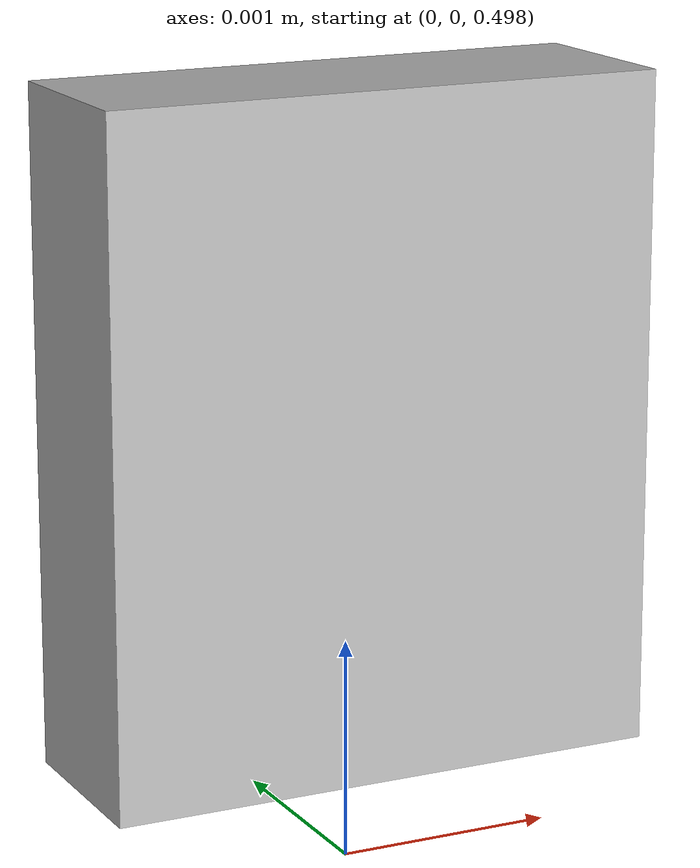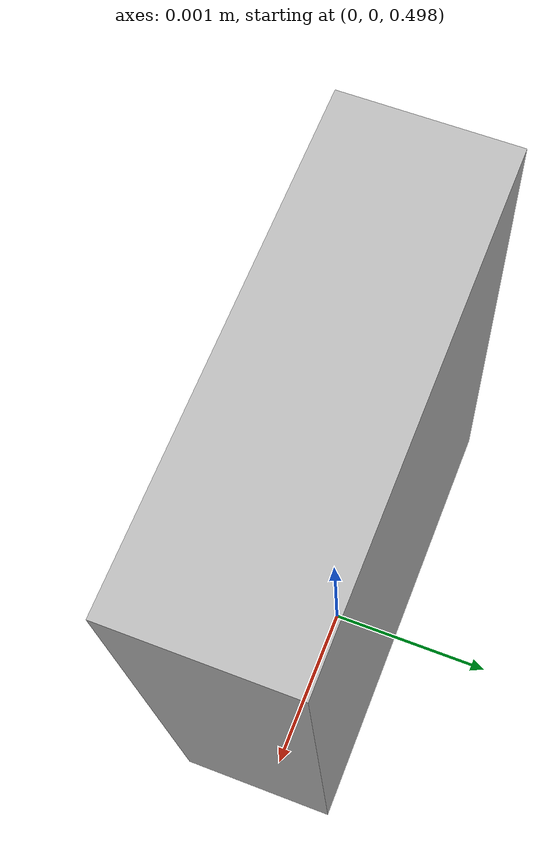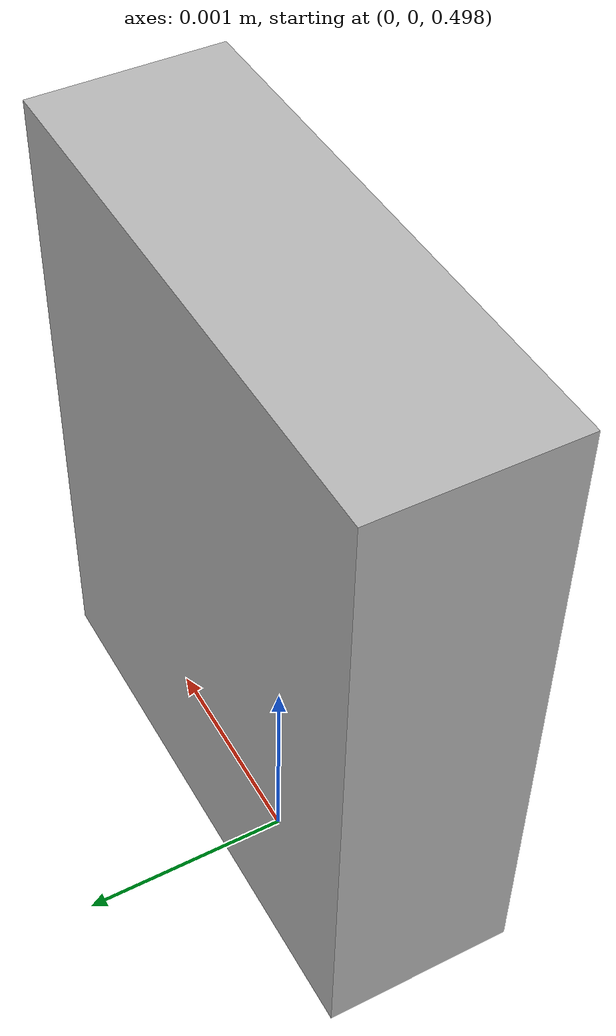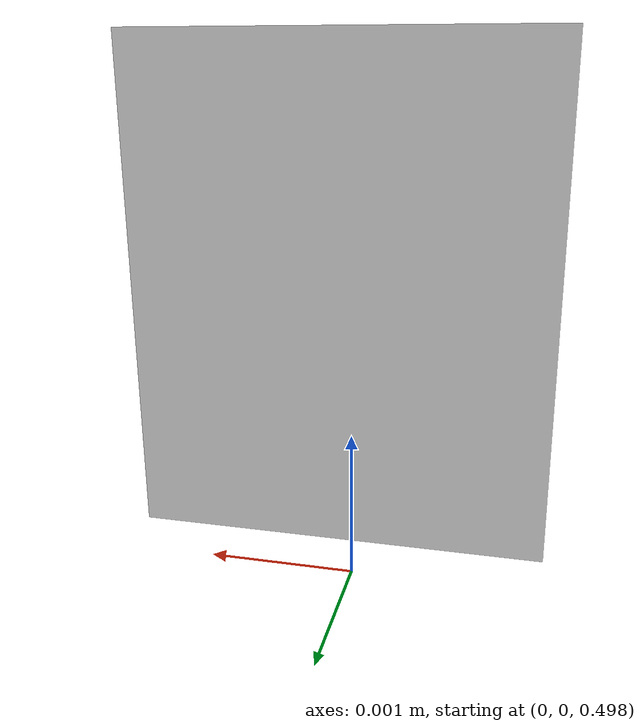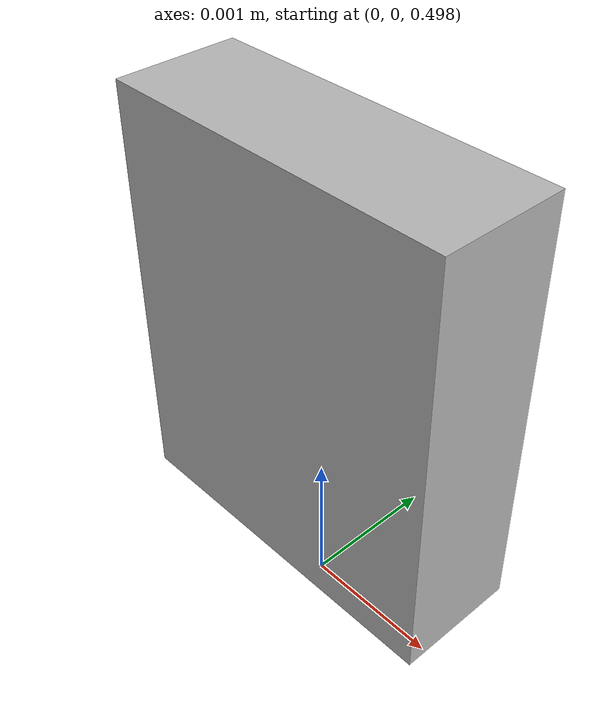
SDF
<?xml version="1.0" ?>
<sdf version="1.9">
  <model name="imu_box">
    <pose>0 0 0.5 0 0 0</pose>
    <link name="imu_body">
      <inertial>
        <mass>1.34e-3</mass>
        <inertia>
          <ixx>0.01</ixx>
          <iyy>0.01</iyy>
          <izz>0.01</izz>
        </inertia>
      </inertial>

      <collision name="collision">
        <geometry>
          <mesh>
            <uri>model://imu_box/meshes/ISM330DLCTR.dae</uri>
            <scale>1 1 1</scale>
          </mesh>
        </geometry>
      </collision>

      <visual name="visual">
        <geometry>
          <box><size>0.0025 0.00086 0.003</size></box>
        </geometry>
      </visual>

      <sensor name="imu_sensor" type="imu">
        <always_on>true</always_on>
        <plugin
          name="ism330dlc_plugin"
          filename="libignition-gazebo-imu-system.so">
          <!--=============================================
            Error model patameters of the sensor ISM330DLC
          ==============================================-->
          <topic>/imu/data</topic>
          <update_rate>50</update_rate>

          <gyro_noise_stddev>0.00012</gyro_noise_stddev>
          <gyro_lim>17.45</gyro_lim>
          <gyro_drift_stddev>0.00001</gyro_drift_stddev>
          <gyro_resolution>0.001</gyro_resolution>

          <accel_noise_stddev>0.00001</accel_noise_stddev>
          <accel_lim>78.45</accel_lim>
          <accel_drift_stddev>0.00001</accel_drift_stddev>
          <accel_resolution>0.001</accel_resolution>
        </plugin>
      </sensor>
    </link>
  </model>
</sdf>
